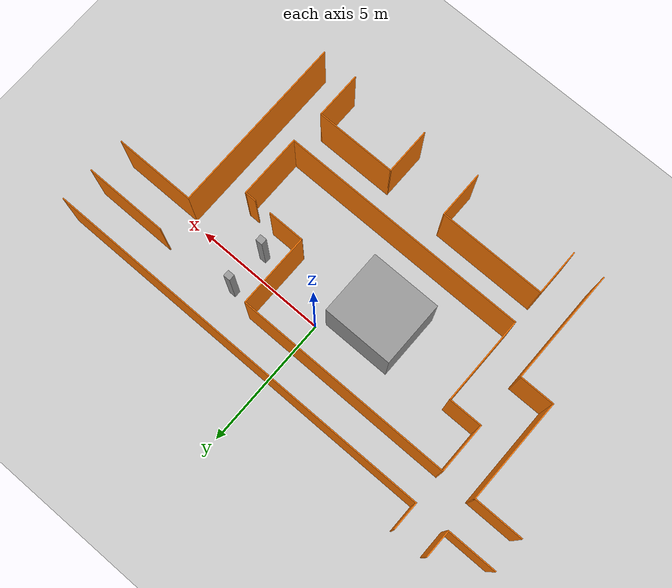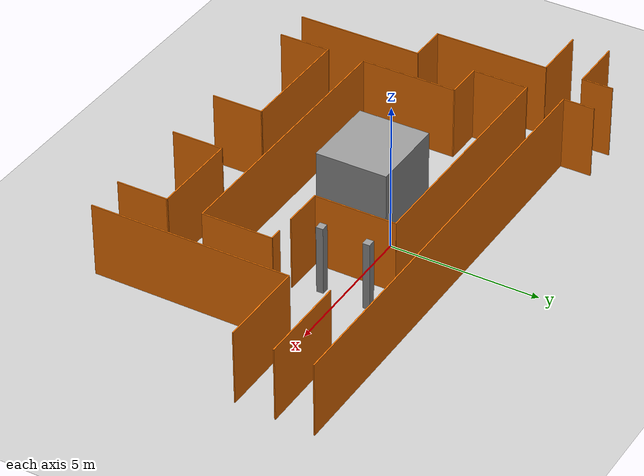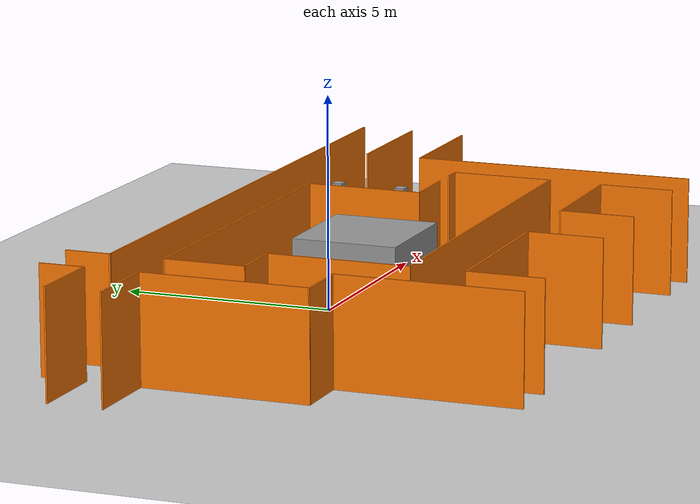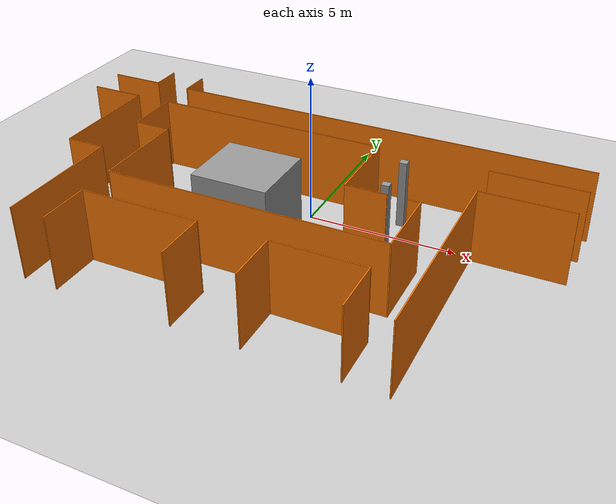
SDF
<sdf version="1.7">
 <world name="default">
  <light name="sun" type="directional">
   <pose>0 0 10 0 -0 0</pose>
   <diffuse>0.8 0.8 0.8 1</diffuse>
   <specular>0.2 0.2 0.2 1</specular>
   <attenuation>
    <range>1000</range>
    <constant>0.9</constant>
    <linear>0.01</linear>
    <quadratic>0.001</quadratic>
   </attenuation>
   <direction>-0.5 0.1 -0.9</direction>
   <spot><inner_angle>0</inner_angle><outer_angle>0</outer_angle><falloff>0</falloff></spot>
  </light>
  <model name="ground_plane">
   <static>1</static>
   <link name="link">
    <collision name="collision">
     <geometry><plane><normal>0 0 1</normal><size>100 100</size></plane></geometry>
     <surface><friction><ode><mu>100</mu><mu2>50</mu2></ode></friction></surface>
    </collision>
    <visual name="visual">
     <cast_shadows>0</cast_shadows>
     <geometry><plane><normal>0 0 1</normal><size>100 100</size></plane></geometry>
     <material>
      <script><uri>file://media/materials/scripts/gazebo.material</uri><name>Gazebo/Grey</name></script>
     </material>
    </visual>
   </link>
  </model>
  <gravity>0 0 -9.8</gravity>
  <magnetic_field>6e-06 2.3e-05 -4.2e-05</magnetic_field>
  <atmosphere type="adiabatic"/>
  <physics type="ode">
   <max_step_size>0.001</max_step_size>
   <real_time_factor>1</real_time_factor>
   <real_time_update_rate>1000</real_time_update_rate>
  </physics>
  <scene><ambient>0.4 0.4 0.4 1</ambient><background>0.7 0.7 0.7 1</background><shadows>1</shadows></scene>
  <audio><device>default</device></audio>
  <spherical_coordinates>
   <surface_model>EARTH_WGS84</surface_model>
   <latitude_deg>0</latitude_deg>
   <longitude_deg>0</longitude_deg>
   <elevation>0</elevation>
   <heading_deg>0</heading_deg>
  </spherical_coordinates>
  <model name="shiyanlou_quarter">
   <pose>-0.26637 -1.67085 0 0 -0 0</pose>
   <link name="Wall_110">
    <collision name="Wall_110_Collision">
     <geometry><box><size>3.0625 0.0375 2.5</size></box></geometry>
     <pose>0 0 1.25 0 -0 0</pose>
    </collision>
    <visual name="Wall_110_Visual">
     <pose>0 0 1.25 0 -0 0</pose>
     <geometry><box><size>3.0625 0.0375 2.5</size></box></geometry>
     <material>
      <script><uri>file://media/materials/scripts/gazebo.material</uri><name>Gazebo/Grey</name></script>
      <ambient>0.996078 0.47451 0.0196078 1</ambient>
     </material>
     <meta><layer>0</layer></meta>
    </visual>
    <pose>7.30337 2.8731 0 0 -0 0</pose>
   </link>
   <link name="Wall_116">
    <collision name="Wall_116_Collision">
     <geometry><box><size>6.74275 0.0375 2.5</size></box></geometry>
     <pose>0 0 1.25 0 -0 0</pose>
    </collision>
    <visual name="Wall_116_Visual">
     <pose>0 0 1.25 0 -0 0</pose>
     <geometry><box><size>6.74275 0.0375 2.5</size></box></geometry>
     <material>
      <script><uri>file://media/materials/scripts/gazebo.material</uri><name>Gazebo/Grey</name></script>
      <ambient>0.996078 0.47451 0.0196078 1</ambient>
     </material>
     <meta><layer>0</layer></meta>
    </visual>
    <pose>5.79087 -1.83653 0 0 -0 1.5708</pose>
   </link>
   <link name="Wall_118">
    <collision name="Wall_118_Collision">
     <geometry><box><size>3 0.0375 2.5</size></box></geometry>
     <pose>0 0 1.25 0 -0 0</pose>
    </collision>
    <visual name="Wall_118_Visual">
     <pose>0 0 1.25 0 -0 0</pose>
     <geometry><box><size>3 0.0375 2.5</size></box></geometry>
     <material>
      <script><uri>file://media/materials/scripts/gazebo.material</uri><name>Gazebo/Grey</name></script>
      <ambient>0.996078 0.47451 0.0196078 1</ambient>
     </material>
     <meta><layer>0</layer></meta>
    </visual>
    <pose>7.27212 1.5161 0 0 -0 0</pose>
   </link>
   <link name="Wall_122">
    <collision name="Wall_122_Collision">
     <geometry><box><size>1.75 0.0375 2.5</size></box></geometry>
     <pose>0 0 1.25 0 -0 0</pose>
    </collision>
    <visual name="Wall_122_Visual">
     <pose>0 0 1.25 0 -0 0</pose>
     <geometry><box><size>1.75 0.0375 2.5</size></box></geometry>
     <material>
      <script><uri>file://media/materials/scripts/gazebo.material</uri><name>Gazebo/Grey</name></script>
      <ambient>0.996078 0.47451 0.0196078 1</ambient>
     </material>
     <meta><layer>0</layer></meta>
    </visual>
    <pose>1.45788 -4.32565 0 0 -0 -1.5708</pose>
   </link>
   <link name="Wall_126">
    <collision name="Wall_126_Collision">
     <geometry><box><size>3.0225 0.0375 2.5</size></box></geometry>
     <pose>0 0 1.25 0 -0 0</pose>
    </collision>
    <visual name="Wall_126_Visual">
     <pose>0 0 1.25 0 -0 0</pose>
     <geometry><box><size>3.0225 0.0375 2.5</size></box></geometry>
     <material>
      <script><uri>file://media/materials/scripts/gazebo.material</uri><name>Gazebo/Grey</name></script>
      <ambient>0.996078 0.47451 0.0196078 1</ambient>
     </material>
     <meta><layer>0</layer></meta>
    </visual>
    <pose>2.95038 -3.4694 0 0 -0 0</pose>
   </link>
   <link name="Wall_130">
    <collision name="Wall_130_Collision">
     <geometry><box><size>1.75 0.0375 2.5</size></box></geometry>
     <pose>0 0 1.25 0 -0 0</pose>
    </collision>
    <visual name="Wall_130_Visual">
     <pose>0 0 1.25 0 -0 0</pose>
     <geometry><box><size>1.75 0.0375 2.5</size></box></geometry>
     <material>
      <script><uri>file://media/materials/scripts/gazebo.material</uri><name>Gazebo/Grey</name></script>
      <ambient>0.996078 0.47451 0.0196078 1</ambient>
     </material>
     <meta><layer>0</layer></meta>
    </visual>
    <pose>4.44287 -4.32565 0 0 -0 -1.5708</pose>
   </link>
   <link name="Wall_19">
    <collision name="Wall_19_Collision">
     <geometry><box><size>3.875 0.0375 2.5</size></box></geometry>
     <pose>0 0 1.25 0 -0 0</pose>
    </collision>
    <visual name="Wall_19_Visual">
     <pose>0 0 1.25 0 -0 0</pose>
     <geometry><box><size>3.875 0.0375 2.5</size></box></geometry>
     <material>
      <script><uri>file://media/materials/scripts/gazebo.material</uri><name>Gazebo/Grey</name></script>
      <ambient>0.996078 0.47451 0.0196078 1</ambient>
     </material>
     <meta><layer>0</layer></meta>
    </visual>
    <pose>-7.28637 0.972348 0 0 -0 -1.5708</pose>
   </link>
   <link name="Wall_26">
    <collision name="Wall_26_Collision">
     <geometry><box><size>1.0625 0.0375 2.5</size></box></geometry>
     <pose>0 0 1.25 0 -0 0</pose>
    </collision>
    <visual name="Wall_26_Visual">
     <pose>0 0 1.25 0 -0 0</pose>
     <geometry><box><size>1.0625 0.0375 2.5</size></box></geometry>
     <material>
      <script><uri>file://media/materials/scripts/gazebo.material</uri><name>Gazebo/Grey</name></script>
      <ambient>0.996078 0.47451 0.0196078 1</ambient>
     </material>
     <meta><layer>0</layer></meta>
    </visual>
    <pose>-7.28637 4.6766 0 0 -0 1.5708</pose>
   </link>
   <link name="Wall_31">
    <collision name="Wall_31_Collision">
     <geometry><box><size>1.06266 0.0375 2.5</size></box></geometry>
     <pose>0 0 1.25 0 -0 0</pose>
    </collision>
    <visual name="Wall_31_Visual">
     <pose>0 0 1.25 0 -0 0</pose>
     <geometry><box><size>1.06266 0.0375 2.5</size></box></geometry>
     <material>
      <script><uri>file://media/materials/scripts/gazebo.material</uri><name>Gazebo/Grey</name></script>
      <ambient>0.996078 0.47451 0.0196078 1</ambient>
     </material>
     <meta><layer>0</layer></meta>
    </visual>
    <pose>-6.01337 4.67657 0 0 -0 -1.5708</pose>
   </link>
   <link name="Wall_33">
    <collision name="Wall_33_Collision">
     <geometry><box><size>1.875 0.0375 2.5</size></box></geometry>
     <pose>0 0 1.25 0 -0 0</pose>
    </collision>
    <visual name="Wall_33_Visual">
     <pose>0 0 1.25 0 -0 0</pose>
     <geometry><box><size>1.875 0.0375 2.5</size></box></geometry>
     <material>
      <script><uri>file://media/materials/scripts/gazebo.material</uri><name>Gazebo/Grey</name></script>
      <ambient>0.996078 0.47451 0.0196078 1</ambient>
     </material>
     <meta><layer>0</layer></meta>
    </visual>
    <pose>-8.20513 4.1641 0 0 -0 3.14159</pose>
   </link>
   <link name="Wall_35">
    <collision name="Wall_35_Collision">
     <geometry><box><size>1.875 0.0375 2.5</size></box></geometry>
     <pose>0 0 1.25 0 -0 0</pose>
    </collision>
    <visual name="Wall_35_Visual">
     <pose>0 0 1.25 0 -0 0</pose>
     <geometry><box><size>1.875 0.0375 2.5</size></box></geometry>
     <material>
      <script><uri>file://media/materials/scripts/gazebo.material</uri><name>Gazebo/Grey</name></script>
      <ambient>0.996078 0.47451 0.0196078 1</ambient>
     </material>
     <meta><layer>0</layer></meta>
    </visual>
    <pose>-8.20513 2.8911 0 0 -0 3.14159</pose>
   </link>
   <link name="Wall_38">
    <collision name="Wall_38_Collision">
     <geometry><box><size>1.2785 0.0375 2.5</size></box></geometry>
     <pose>0 0 1.25 0 -0 0</pose>
    </collision>
    <visual name="Wall_38_Visual">
     <pose>0 0 1.25 0 -0 0</pose>
     <geometry><box><size>1.2785 0.0375 2.5</size></box></geometry>
     <material>
      <script><uri>file://media/materials/scripts/gazebo.material</uri><name>Gazebo/Grey</name></script>
      <ambient>0.996078 0.47451 0.0196078 1</ambient>
     </material>
     <meta><layer>0</layer></meta>
    </visual>
    <pose>-5.38762 1.0411 0 0 -0 0</pose>
   </link>
   <link name="Wall_42">
    <collision name="Wall_42_Collision">
     <geometry><box><size>1.33725 0.0375 2.5</size></box></geometry>
     <pose>0 0 1.25 0 -0 0</pose>
    </collision>
    <visual name="Wall_42_Visual">
     <pose>0 0 1.25 0 -0 0</pose>
     <geometry><box><size>1.33725 0.0375 2.5</size></box></geometry>
     <material>
      <script><uri>file://media/materials/scripts/gazebo.material</uri><name>Gazebo/Grey</name></script>
      <ambient>0.996078 0.47451 0.0196078 1</ambient>
     </material>
     <meta><layer>0</layer></meta>
    </visual>
    <pose>-6.6365 -0.946403 0 0 -0 0</pose>
   </link>
   <link name="Wall_44">
    <collision name="Wall_44_Collision">
     <geometry><box><size>3.275 0.0375 2.5</size></box></geometry>
     <pose>0 0 1.25 0 -0 0</pose>
    </collision>
    <visual name="Wall_44_Visual">
     <pose>0 0 1.25 0 -0 0</pose>
     <geometry><box><size>3.275 0.0375 2.5</size></box></geometry>
     <material>
      <script><uri>file://media/materials/scripts/gazebo.material</uri><name>Gazebo/Grey</name></script>
      <ambient>0.996078 0.47451 0.0196078 1</ambient>
     </material>
     <meta><layer>0</layer></meta>
    </visual>
    <pose>-4.76713 -0.577653 0 0 -0 -1.5708</pose>
   </link>
   <link name="Wall_48">
    <collision name="Wall_48_Collision">
     <geometry><box><size>9.3225 0.0375 2.5</size></box></geometry>
     <pose>0 0 1.25 0 -0 0</pose>
    </collision>
    <visual name="Wall_48_Visual">
     <pose>0 0 1.25 0 -0 0</pose>
     <geometry><box><size>9.3225 0.0375 2.5</size></box></geometry>
     <material>
      <script><uri>file://media/materials/scripts/gazebo.material</uri><name>Gazebo/Grey</name></script>
      <ambient>0.996078 0.47451 0.0196078 1</ambient>
     </material>
     <meta><layer>0</layer></meta>
    </visual>
    <pose>-0.124625 -2.1964 0 0 -0 0</pose>
   </link>
   <link name="Wall_5">
    <collision name="Wall_5_Collision">
     <geometry><box><size>14.8938 0.0375 2.5</size></box></geometry>
     <pose>0 0 1.25 0 -0 0</pose>
    </collision>
    <visual name="Wall_5_Visual">
     <pose>0 0 1.25 0 -0 0</pose>
     <geometry><box><size>14.8938 0.0375 2.5</size></box></geometry>
     <material>
      <script><uri>file://media/materials/scripts/gazebo.material</uri><name>Gazebo/Grey</name></script>
      <ambient>0.996078 0.47451 0.0196078 1</ambient>
     </material>
     <meta><layer>0</layer></meta>
    </visual>
    <pose>1.41475 4.1641 0 0 -0 0</pose>
   </link>
   <link name="Wall_52">
    <collision name="Wall_52_Collision">
     <geometry><box><size>4.0125 0.0375 2.5</size></box></geometry>
     <pose>0 0 1.25 0 -0 0</pose>
    </collision>
    <visual name="Wall_52_Visual">
     <pose>0 0 1.25 0 -0 0</pose>
     <geometry><box><size>4.0125 0.0375 2.5</size></box></geometry>
     <material>
      <script><uri>file://media/materials/scripts/gazebo.material</uri><name>Gazebo/Grey</name></script>
      <ambient>0.996078 0.47451 0.0196078 1</ambient>
     </material>
     <meta><layer>0</layer></meta>
    </visual>
    <pose>-2.77962 -3.4694 0 0 -0 0</pose>
   </link>
   <link name="Wall_54">
    <collision name="Wall_54_Collision">
     <geometry><box><size>1.75 0.0375 2.5</size></box></geometry>
     <pose>0 0 1.25 0 -0 0</pose>
    </collision>
    <visual name="Wall_54_Visual">
     <pose>0 0 1.25 0 -0 0</pose>
     <geometry><box><size>1.75 0.0375 2.5</size></box></geometry>
     <material>
      <script><uri>file://media/materials/scripts/gazebo.material</uri><name>Gazebo/Grey</name></script>
      <ambient>0.996078 0.47451 0.0196078 1</ambient>
     </material>
     <meta><layer>0</layer></meta>
    </visual>
    <pose>-4.76713 -4.32565 0 0 -0 -1.5708</pose>
   </link>
   <link name="Wall_60">
    <collision name="Wall_60_Collision">
     <geometry><box><size>4.24275 0.0375 2.5</size></box></geometry>
     <pose>0 0 1.25 0 -0 0</pose>
    </collision>
    <visual name="Wall_60_Visual">
     <pose>0 0 1.25 0 -0 0</pose>
     <geometry><box><size>4.24275 0.0375 2.5</size></box></geometry>
     <material>
      <script><uri>file://media/materials/scripts/gazebo.material</uri><name>Gazebo/Grey</name></script>
      <ambient>0.996078 0.47451 0.0196078 1</ambient>
     </material>
     <meta><layer>0</layer></meta>
    </visual>
    <pose>-5.98663 -3.04902 0 0 -0 -1.5708</pose>
   </link>
   <link name="Wall_62">
    <collision name="Wall_62_Collision">
     <geometry><box><size>1.75 0.0375 2.5</size></box></geometry>
     <pose>0 0 1.25 0 -0 0</pose>
    </collision>
    <visual name="Wall_62_Visual">
     <pose>0 0 1.25 0 -0 0</pose>
     <geometry><box><size>1.75 0.0375 2.5</size></box></geometry>
     <material>
      <script><uri>file://media/materials/scripts/gazebo.material</uri><name>Gazebo/Grey</name></script>
      <ambient>0.996078 0.47451 0.0196078 1</ambient>
     </material>
     <meta><layer>0</layer></meta>
    </visual>
    <pose>-0.792125 -4.32565 0 0 -0 -1.5708</pose>
   </link>
   <link name="Wall_70">
    <collision name="Wall_70_Collision">
     <geometry><box><size>2.4 0.0375 2.5</size></box></geometry>
     <pose>0 0 1.25 0 -0 0</pose>
    </collision>
    <visual name="Wall_70_Visual">
     <pose>0 0 1.25 0 -0 0</pose>
     <geometry><box><size>2.4 0.0375 2.5</size></box></geometry>
     <material>
      <script><uri>file://media/materials/scripts/gazebo.material</uri><name>Gazebo/Grey</name></script>
      <ambient>0.996078 0.47451 0.0196078 1</ambient>
     </material>
     <meta><layer>0</layer></meta>
    </visual>
    <pose>4.51788 -1.01515 0 0 -0 1.5708</pose>
   </link>
   <link name="Wall_72">
    <collision name="Wall_72_Collision">
     <geometry><box><size>0.4375 0.0375 2.5</size></box></geometry>
     <pose>0 0 1.25 0 -0 0</pose>
    </collision>
    <visual name="Wall_72_Visual">
     <pose>0 0 1.25 0 -0 0</pose>
     <geometry><box><size>0.4375 0.0375 2.5</size></box></geometry>
     <material>
      <script><uri>file://media/materials/scripts/gazebo.material</uri><name>Gazebo/Grey</name></script>
      <ambient>0.996078 0.47451 0.0196078 1</ambient>
     </material>
     <meta><layer>0</layer></meta>
    </visual>
    <pose>4.31787 0.166098 0 0 -0 3.14159</pose>
   </link>
   <link name="Wall_81">
    <collision name="Wall_81_Collision">
     <geometry><box><size>1.375 0.0375 2.5</size></box></geometry>
     <pose>0 0 1.25 0 -0 0</pose>
    </collision>
    <visual name="Wall_81_Visual">
     <pose>0 0 1.25 0 -0 0</pose>
     <geometry><box><size>1.375 0.0375 2.5</size></box></geometry>
     <material>
      <script><uri>file://media/materials/scripts/gazebo.material</uri><name>Gazebo/Grey</name></script>
      <ambient>0.996078 0.47451 0.0196078 1</ambient>
     </material>
     <meta><layer>0</layer></meta>
    </visual>
    <pose>2.79162 0.166098 0 0 -0 3.14159</pose>
   </link>
   <link name="Wall_83">
    <collision name="Wall_83_Collision">
     <geometry><box><size>2.75 0.0375 2.5</size></box></geometry>
     <pose>0 0 1.25 0 -0 0</pose>
    </collision>
    <visual name="Wall_83_Visual">
     <pose>0 0 1.25 0 -0 0</pose>
     <geometry><box><size>2.75 0.0375 2.5</size></box></geometry>
     <material>
      <script><uri>file://media/materials/scripts/gazebo.material</uri><name>Gazebo/Grey</name></script>
      <ambient>0.996078 0.47451 0.0196078 1</ambient>
     </material>
     <meta><layer>0</layer></meta>
    </visual>
    <pose>2.12062 1.53485 0 0 -0 -1.5708</pose>
   </link>
   <link name="Wall_87">
    <collision name="Wall_87_Collision">
     <geometry><box><size>1.87504 0.0375 2.5</size></box></geometry>
     <pose>0 0 1.25 0 -0 0</pose>
    </collision>
    <visual name="Wall_87_Visual">
     <pose>0 0 1.25 0 -0 0</pose>
     <geometry><box><size>1.87504 0.0375 2.5</size></box></geometry>
     <material>
      <script><uri>file://media/materials/scripts/gazebo.material</uri><name>Gazebo/Grey</name></script>
      <ambient>0.996078 0.47451 0.0196078 1</ambient>
     </material>
     <meta><layer>0</layer></meta>
    </visual>
    <pose>-6.01337 1.97235 0 0 -0 -1.5708</pose>
   </link>
   <link name="Wall_91">
    <collision name="Wall_91_Collision">
     <geometry><box><size>8.16512 0.0375 2.5</size></box></geometry>
     <pose>0 0 1.25 0 -0 0</pose>
    </collision>
    <visual name="Wall_91_Visual">
     <pose>0 0 1.25 0 -0 0</pose>
     <geometry><box><size>8.16512 0.0375 2.5</size></box></geometry>
     <material>
      <script><uri>file://media/materials/scripts/gazebo.material</uri><name>Gazebo/Grey</name></script>
      <ambient>0.996078 0.47451 0.0196078 1</ambient>
     </material>
     <meta><layer>0</layer></meta>
    </visual>
    <pose>-1.94956 2.8911 0 0 -0 0</pose>
   </link>
   <static>1</static>
  </model>
  <model name="unit_box">
   <pose>-1.52569 -1.4966 1.16084 0 -0 6.1e-05</pose>
   <link name="link">
    <inertial>
     <mass>1</mass>
     <inertia>
      <ixx>0.166667</ixx>
      <ixy>0</ixy>
      <ixz>0</ixz>
      <iyy>0.166667</iyy>
      <iyz>0</iyz>
      <izz>0.166667</izz>
     </inertia>
    </inertial>
    <collision name="collision"><geometry><box><size>2.61987 2.42119 2.32167</size></box></geometry></collision>
    <visual name="visual">
     <geometry><box><size>2.61987 2.42119 2.32167</size></box></geometry>
     <material>
      <script><name>Gazebo/Grey</name><uri>file://media/materials/scripts/gazebo.material</uri></script>
     </material>
    </visual>
   </link>
  </model>
  <model name="unit_box_0_clone">
   <pose>2.86314 -0.673354 1.17313 7e-06 -8e-06 0.010661</pose>
   <link name="link">
    <inertial>
     <mass>1</mass>
     <inertia>
      <ixx>0.166667</ixx>
      <ixy>0</ixy>
      <ixz>0</ixz>
      <iyy>0.166667</iyy>
      <iyz>0</iyz>
      <izz>0.166667</izz>
     </inertia>
    </inertial>
    <collision name="collision"><geometry><box><size>0.259842 0.236545 2.34625</size></box></geometry></collision>
    <visual name="visual">
     <geometry><box><size>0.259842 0.236545 2.34625</size></box></geometry>
     <material>
      <script><name>Gazebo/Grey</name><uri>file://media/materials/scripts/gazebo.material</uri></script>
     </material>
    </visual>
   </link>
  </model>
  <model name="unit_box_0_clone_clone">
   <pose>2.85851 0.883934 1.17313 5e-06 0 0.010644</pose>
   <link name="link">
    <inertial>
     <mass>1</mass>
     <inertia>
      <ixx>0.166667</ixx>
      <ixy>0</ixy>
      <ixz>0</ixz>
      <iyy>0.166667</iyy>
      <iyz>0</iyz>
      <izz>0.166667</izz>
     </inertia>
    </inertial>
    <collision name="collision"><geometry><box><size>0.259842 0.236545 2.34625</size></box></geometry></collision>
    <visual name="visual">
     <geometry><box><size>0.259842 0.236545 2.34625</size></box></geometry>
     <material>
      <script><name>Gazebo/Grey</name><uri>file://media/materials/scripts/gazebo.material</uri></script>
     </material>
    </visual>
   </link>
  </model>
 </world>
</sdf>
